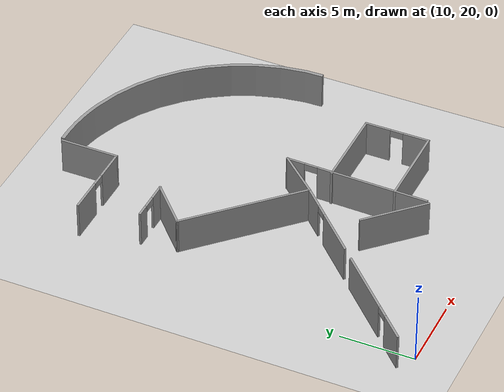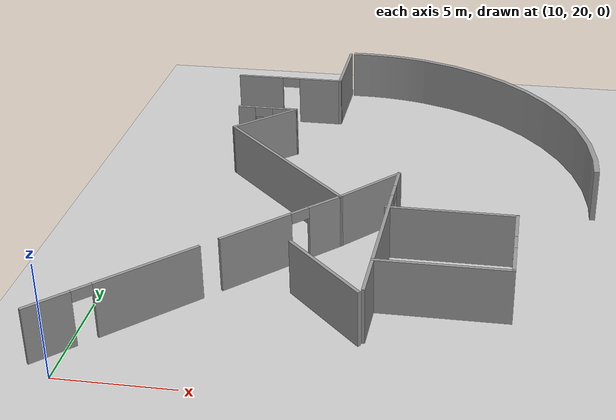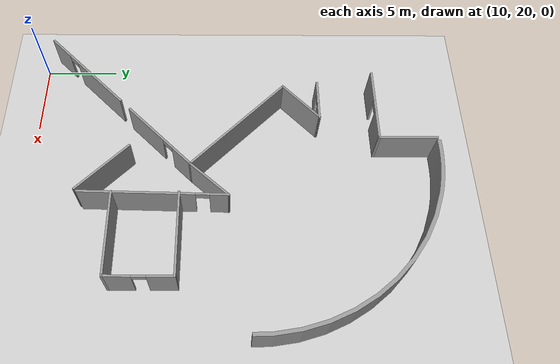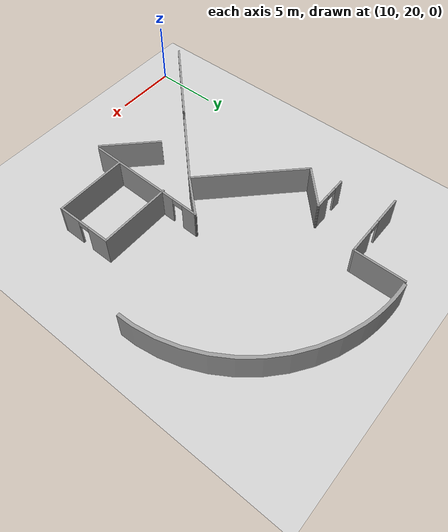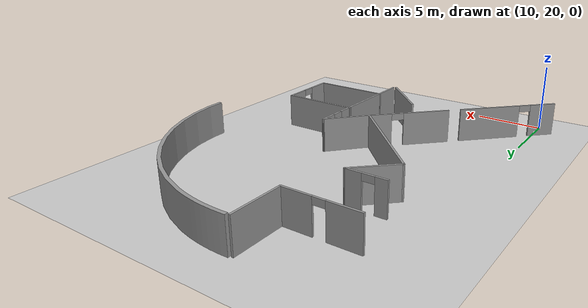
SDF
<sdf version="1.6">
 <world name="default">
  <model name="ground_plane">
   <static>1</static>
   <link name="link">
    <collision name="collision">
     <geometry><plane><normal>0 0 1</normal><size>100 100</size></plane></geometry>
     <surface>
      <contact><collide_bitmask>65535</collide_bitmask></contact>
      <friction><ode><mu>100</mu><mu2>50</mu2></ode></friction>
     </surface>
    </collision>
    <visual name="visual">
     <cast_shadows>0</cast_shadows>
     <geometry><plane><normal>0 0 1</normal><size>100 100</size></plane></geometry>
     <material>
      <script><uri>file://media/materials/scripts/gazebo.material</uri><name>Gazebo/Grey</name></script>
     </material>
    </visual>
   </link>
  </model>
  <model name="Curved_wall_1.25m">
   <link name="link_0">
    <inertial>
     <mass>1</mass>
     <inertia>
      <ixx>0.166667</ixx>
      <ixy>0</ixy>
      <ixz>0</ixz>
      <iyy>0.166667</iyy>
      <iyz>0</iyz>
      <izz>0.166667</izz>
     </inertia>
    </inertial>
    <pose>-4.4e-05 -6e-06 0 0 -0 0</pose>
    <visual name="visual">
     <geometry><mesh><uri>meshes/curved wall.dae</uri><scale>1 1 1</scale></mesh></geometry>
     <material>
      <lighting>1</lighting>
      <script><uri>file://media/materials/scripts/gazebo.material</uri><name>Gazebo/Grey</name></script>
      <shader type="pixel"/>
     </material>
    </visual>
    <collision name="collision">
     <geometry><mesh><uri>meshes/curved wall.dae</uri><scale>1 1 1</scale></mesh></geometry>
     <surface>
      <friction>
       <ode><mu>1</mu><mu2>1</mu2><fdir1>0 0 0</fdir1><slip1>0</slip1><slip2>0</slip2></ode>
       <torsional>
        <coefficient>1</coefficient>
        <patch_radius>0</patch_radius>
        <surface_radius>0</surface_radius>
        <use_patch_radius>1</use_patch_radius>
        <ode><slip>0</slip></ode>
       </torsional>
      </friction>
      <bounce><restitution_coefficient>0</restitution_coefficient><threshold>1e+06</threshold></bounce>
      <contact>
       <collide_without_contact>0</collide_without_contact>
       <collide_without_contact_bitmask>1</collide_without_contact_bitmask>
       <collide_bitmask>1</collide_bitmask>
       <ode>
        <soft_cfm>0</soft_cfm>
        <soft_erp>0.2</soft_erp>
        <kp>1e+13</kp>
        <kd>1</kd>
        <max_vel>0.01</max_vel>
        <min_depth>0</min_depth>
       </ode>
       <bullet>
        <split_impulse>1</split_impulse>
        <split_impulse_penetration_threshold>-0.01</split_impulse_penetration_threshold>
        <soft_cfm>0</soft_cfm>
        <soft_erp>0.2</soft_erp>
        <kp>1e+13</kp>
        <kd>1</kd>
       </bullet>
      </contact>
     </surface>
    </collision>
   </link>
   <static>1</static>
   <pose>25.5983 43.227 1.24999 6e-06 -5e-06 0.031431</pose>
  </model>
  <model name="Level_1_with_doors">
   <link name="Wall_18">
    <pose>9.68123 21.1617 0 0 -0 0</pose>
    <visual name="Wall_18_Visual_2">
     <pose>0.051797 0 2.25 0 -0 0</pose>
     <geometry><box><size>0.9 0.15 0.5</size></box></geometry>
     <material>
      <script><uri>file://media/materials/scripts/gazebo.material</uri><name>Gazebo/Grey</name></script>
      <ambient>1 1 1 1</ambient>
      <shader type="pixel"/>
     </material>
     <meta><layer>0</layer></meta>
    </visual>
    <visual name="Wall_18_Visual_1">
     <pose>1.6259 0 1.25 0 -0 0</pose>
     <geometry><box><size>2.2482 0.15 2.5</size></box></geometry>
     <material>
      <script><uri>file://media/materials/scripts/gazebo.material</uri><name>Gazebo/Grey</name></script>
      <ambient>1 1 1 1</ambient>
      <shader type="pixel"/>
     </material>
     <meta><layer>0</layer></meta>
    </visual>
    <visual name="Wall_18_Visual_0">
     <pose>-1.5741 0 1.25 0 -0 0</pose>
     <geometry><box><size>2.3518 0.15 2.5</size></box></geometry>
     <material>
      <script><uri>file://media/materials/scripts/gazebo.material</uri><name>Gazebo/Grey</name></script>
      <ambient>1 1 1 1</ambient>
      <shader type="pixel"/>
     </material>
     <meta><layer>0</layer></meta>
    </visual>
    <collision name="Wall_18_Collision_0">
     <pose>-1.5741 0 1.25 0 -0 0</pose>
     <geometry><box><size>2.3518 0.15 2.5</size></box></geometry>
     <surface>
      <friction>
       <ode><mu>1</mu><mu2>1</mu2><fdir1>0 0 0</fdir1><slip1>0</slip1><slip2>0</slip2></ode>
       <torsional>
        <coefficient>1</coefficient>
        <patch_radius>0</patch_radius>
        <surface_radius>0</surface_radius>
        <use_patch_radius>1</use_patch_radius>
        <ode><slip>0</slip></ode>
       </torsional>
      </friction>
      <bounce><restitution_coefficient>0</restitution_coefficient><threshold>1e+06</threshold></bounce>
      <contact>
       <collide_without_contact>0</collide_without_contact>
       <collide_without_contact_bitmask>1</collide_without_contact_bitmask>
       <collide_bitmask>1</collide_bitmask>
       <ode>
        <soft_cfm>0</soft_cfm>
        <soft_erp>0.2</soft_erp>
        <kp>1e+13</kp>
        <kd>1</kd>
        <max_vel>0.01</max_vel>
        <min_depth>0</min_depth>
       </ode>
       <bullet>
        <split_impulse>1</split_impulse>
        <split_impulse_penetration_threshold>-0.01</split_impulse_penetration_threshold>
        <soft_cfm>0</soft_cfm>
        <soft_erp>0.2</soft_erp>
        <kp>1e+13</kp>
        <kd>1</kd>
       </bullet>
      </contact>
     </surface>
    </collision>
    <collision name="Wall_18_Collision_2">
     <pose>0.051797 0 2.25 0 -0 0</pose>
     <geometry><box><size>0.9 0.15 0.5</size></box></geometry>
     <surface>
      <friction>
       <ode><mu>1</mu><mu2>1</mu2><fdir1>0 0 0</fdir1><slip1>0</slip1><slip2>0</slip2></ode>
       <torsional>
        <coefficient>1</coefficient>
        <patch_radius>0</patch_radius>
        <surface_radius>0</surface_radius>
        <use_patch_radius>1</use_patch_radius>
        <ode><slip>0</slip></ode>
       </torsional>
      </friction>
      <bounce><restitution_coefficient>0</restitution_coefficient><threshold>1e+06</threshold></bounce>
      <contact>
       <collide_without_contact>0</collide_without_contact>
       <collide_without_contact_bitmask>1</collide_without_contact_bitmask>
       <collide_bitmask>1</collide_bitmask>
       <ode>
        <soft_cfm>0</soft_cfm>
        <soft_erp>0.2</soft_erp>
        <kp>1e+13</kp>
        <kd>1</kd>
        <max_vel>0.01</max_vel>
        <min_depth>0</min_depth>
       </ode>
       <bullet>
        <split_impulse>1</split_impulse>
        <split_impulse_penetration_threshold>-0.01</split_impulse_penetration_threshold>
        <soft_cfm>0</soft_cfm>
        <soft_erp>0.2</soft_erp>
        <kp>1e+13</kp>
        <kd>1</kd>
       </bullet>
      </contact>
     </surface>
    </collision>
    <collision name="Wall_18_Collision_1">
     <pose>1.6259 0 1.25 0 -0 0</pose>
     <geometry><box><size>2.2482 0.15 2.5</size></box></geometry>
     <surface>
      <friction>
       <ode><mu>1</mu><mu2>1</mu2><fdir1>0 0 0</fdir1><slip1>0</slip1><slip2>0</slip2></ode>
       <torsional>
        <coefficient>1</coefficient>
        <patch_radius>0</patch_radius>
        <surface_radius>0</surface_radius>
        <use_patch_radius>1</use_patch_radius>
        <ode><slip>0</slip></ode>
       </torsional>
      </friction>
      <bounce><restitution_coefficient>0</restitution_coefficient><threshold>1e+06</threshold></bounce>
      <contact>
       <collide_without_contact>0</collide_without_contact>
       <collide_without_contact_bitmask>1</collide_without_contact_bitmask>
       <collide_bitmask>1</collide_bitmask>
       <ode>
        <soft_cfm>0</soft_cfm>
        <soft_erp>0.2</soft_erp>
        <kp>1e+13</kp>
        <kd>1</kd>
        <max_vel>0.01</max_vel>
        <min_depth>0</min_depth>
       </ode>
       <bullet>
        <split_impulse>1</split_impulse>
        <split_impulse_penetration_threshold>-0.01</split_impulse_penetration_threshold>
        <soft_cfm>0</soft_cfm>
        <soft_erp>0.2</soft_erp>
        <kp>1e+13</kp>
        <kd>1</kd>
       </bullet>
      </contact>
     </surface>
    </collision>
   </link>
   <link name="Wall_19">
    <pose>12.3562 23.0867 0 0 -0 1.5708</pose>
    <visual name="Wall_19_Visual">
     <pose>0 0 1.25 0 -0 0</pose>
     <geometry><box><size>4 0.15 2.5</size></box></geometry>
     <material>
      <script><uri>file://media/materials/scripts/gazebo.material</uri><name>Gazebo/Grey</name></script>
      <ambient>1 1 1 1</ambient>
      <shader type="pixel"/>
     </material>
     <meta><layer>0</layer></meta>
    </visual>
    <collision name="Wall_19_Collision">
     <pose>0 0 1.25 0 -0 0</pose>
     <geometry><box><size>4 0.15 2.5</size></box></geometry>
     <surface>
      <friction>
       <ode><mu>1</mu><mu2>1</mu2><fdir1>0 0 0</fdir1><slip1>0</slip1><slip2>0</slip2></ode>
       <torsional>
        <coefficient>1</coefficient>
        <patch_radius>0</patch_radius>
        <surface_radius>0</surface_radius>
        <use_patch_radius>1</use_patch_radius>
        <ode><slip>0</slip></ode>
       </torsional>
      </friction>
      <bounce><restitution_coefficient>0</restitution_coefficient><threshold>1e+06</threshold></bounce>
      <contact>
       <collide_without_contact>0</collide_without_contact>
       <collide_without_contact_bitmask>1</collide_without_contact_bitmask>
       <collide_bitmask>1</collide_bitmask>
       <ode>
        <soft_cfm>0</soft_cfm>
        <soft_erp>0.2</soft_erp>
        <kp>1e+13</kp>
        <kd>1</kd>
        <max_vel>0.01</max_vel>
        <min_depth>0</min_depth>
       </ode>
       <bullet>
        <split_impulse>1</split_impulse>
        <split_impulse_penetration_threshold>-0.01</split_impulse_penetration_threshold>
        <soft_cfm>0</soft_cfm>
        <soft_erp>0.2</soft_erp>
        <kp>1e+13</kp>
        <kd>1</kd>
       </bullet>
      </contact>
     </surface>
    </collision>
   </link>
   <link name="Wall_24">
    <pose>9.27646 3.41784 0 0 -0 0.785398</pose>
    <visual name="Wall_24_Visual_6">
     <pose>5.16658 0 2.25 0 -0 0</pose>
     <geometry><box><size>0.9 0.15 0.5</size></box></geometry>
     <material>
      <script><uri>file://media/materials/scripts/gazebo.material</uri><name>Gazebo/Grey</name></script>
      <ambient>1 1 1 1</ambient>
      <shader type="pixel"/>
     </material>
     <meta><layer>0</layer></meta>
    </visual>
    <visual name="Wall_24_Visual_0">
     <pose>-6.3589 0 1.25 0 -0 0</pose>
     <geometry><box><size>2.0322 0.15 2.5</size></box></geometry>
     <material>
      <script><uri>file://media/materials/scripts/gazebo.material</uri><name>Gazebo/Grey</name></script>
      <ambient>1 1 1 1</ambient>
      <shader type="pixel"/>
     </material>
     <meta><layer>0</layer></meta>
    </visual>
    <visual name="Wall_24_Visual_5">
     <pose>0.291819 0 2.25 0 -0 0</pose>
     <geometry><box><size>0 0.15 0.5</size></box></geometry>
     <material>
      <script><uri>file://media/materials/scripts/gazebo.material</uri><name>Gazebo/Grey</name></script>
      <ambient>1 1 1 1</ambient>
      <shader type="pixel"/>
     </material>
     <meta><layer>0</layer></meta>
    </visual>
    <visual name="Wall_24_Visual_3">
     <pose>6.49579 0 1.25 0 -0 0</pose>
     <geometry><box><size>1.75842 0.15 2.5</size></box></geometry>
     <material>
      <script><uri>file://media/materials/scripts/gazebo.material</uri><name>Gazebo/Grey</name></script>
      <ambient>1 1 1 1</ambient>
      <shader type="pixel"/>
     </material>
     <meta><layer>0</layer></meta>
    </visual>
    <visual name="Wall_24_Visual_1">
     <pose>-2.07549 0 1.25 0 -0 0</pose>
     <geometry><box><size>4.73462 0.15 2.5</size></box></geometry>
     <material>
      <script><uri>file://media/materials/scripts/gazebo.material</uri><name>Gazebo/Grey</name></script>
      <ambient>1 1 1 1</ambient>
      <shader type="pixel"/>
     </material>
     <meta><layer>0</layer></meta>
    </visual>
    <visual name="Wall_24_Visual_2">
     <pose>2.9542 0 1.25 0 -0 0</pose>
     <geometry><box><size>3.52476 0.15 2.5</size></box></geometry>
     <material>
      <script><uri>file://media/materials/scripts/gazebo.material</uri><name>Gazebo/Grey</name></script>
      <ambient>1 1 1 1</ambient>
      <shader type="pixel"/>
     </material>
     <meta><layer>0</layer></meta>
    </visual>
    <visual name="Wall_24_Visual_4">
     <pose>-4.8928 0 2.25 0 -0 0</pose>
     <geometry><box><size>0.9 0.15 0.5</size></box></geometry>
     <material>
      <script><uri>file://media/materials/scripts/gazebo.material</uri><name>Gazebo/Grey</name></script>
      <ambient>1 1 1 1</ambient>
      <shader type="pixel"/>
     </material>
     <meta><layer>0</layer></meta>
    </visual>
    <collision name="Wall_24_Collision_1">
     <pose>-2.07549 0 1.25 0 -0 0</pose>
     <geometry><box><size>4.73462 0.15 2.5</size></box></geometry>
     <surface>
      <friction>
       <ode><mu>1</mu><mu2>1</mu2><fdir1>0 0 0</fdir1><slip1>0</slip1><slip2>0</slip2></ode>
       <torsional>
        <coefficient>1</coefficient>
        <patch_radius>0</patch_radius>
        <surface_radius>0</surface_radius>
        <use_patch_radius>1</use_patch_radius>
        <ode><slip>0</slip></ode>
       </torsional>
      </friction>
      <bounce><restitution_coefficient>0</restitution_coefficient><threshold>1e+06</threshold></bounce>
      <contact>
       <collide_without_contact>0</collide_without_contact>
       <collide_without_contact_bitmask>1</collide_without_contact_bitmask>
       <collide_bitmask>1</collide_bitmask>
       <ode>
        <soft_cfm>0</soft_cfm>
        <soft_erp>0.2</soft_erp>
        <kp>1e+13</kp>
        <kd>1</kd>
        <max_vel>0.01</max_vel>
        <min_depth>0</min_depth>
       </ode>
       <bullet>
        <split_impulse>1</split_impulse>
        <split_impulse_penetration_threshold>-0.01</split_impulse_penetration_threshold>
        <soft_cfm>0</soft_cfm>
        <soft_erp>0.2</soft_erp>
        <kp>1e+13</kp>
        <kd>1</kd>
       </bullet>
      </contact>
     </surface>
    </collision>
    <collision name="Wall_24_Collision_2">
     <pose>2.9542 0 1.25 0 -0 0</pose>
     <geometry><box><size>3.52476 0.15 2.5</size></box></geometry>
     <surface>
      <friction>
       <ode><mu>1</mu><mu2>1</mu2><fdir1>0 0 0</fdir1><slip1>0</slip1><slip2>0</slip2></ode>
       <torsional>
        <coefficient>1</coefficient>
        <patch_radius>0</patch_radius>
        <surface_radius>0</surface_radius>
        <use_patch_radius>1</use_patch_radius>
        <ode><slip>0</slip></ode>
       </torsional>
      </friction>
      <bounce><restitution_coefficient>0</restitution_coefficient><threshold>1e+06</threshold></bounce>
      <contact>
       <collide_without_contact>0</collide_without_contact>
       <collide_without_contact_bitmask>1</collide_without_contact_bitmask>
       <collide_bitmask>1</collide_bitmask>
       <ode>
        <soft_cfm>0</soft_cfm>
        <soft_erp>0.2</soft_erp>
        <kp>1e+13</kp>
        <kd>1</kd>
        <max_vel>0.01</max_vel>
        <min_depth>0</min_depth>
       </ode>
       <bullet>
        <split_impulse>1</split_impulse>
        <split_impulse_penetration_threshold>-0.01</split_impulse_penetration_threshold>
        <soft_cfm>0</soft_cfm>
        <soft_erp>0.2</soft_erp>
        <kp>1e+13</kp>
        <kd>1</kd>
       </bullet>
      </contact>
     </surface>
    </collision>
    <collision name="Wall_24_Collision_6">
     <pose>5.16658 0 2.25 0 -0 0</pose>
     <geometry><box><size>0.9 0.15 0.5</size></box></geometry>
     <surface>
      <friction>
       <ode><mu>1</mu><mu2>1</mu2><fdir1>0 0 0</fdir1><slip1>0</slip1><slip2>0</slip2></ode>
       <torsional>
        <coefficient>1</coefficient>
        <patch_radius>0</patch_radius>
        <surface_radius>0</surface_radius>
        <use_patch_radius>1</use_patch_radius>
        <ode><slip>0</slip></ode>
       </torsional>
      </friction>
      <bounce><restitution_coefficient>0</restitution_coefficient><threshold>1e+06</threshold></bounce>
      <contact>
       <collide_without_contact>0</collide_without_contact>
       <collide_without_contact_bitmask>1</collide_without_contact_bitmask>
       <collide_bitmask>1</collide_bitmask>
       <ode>
        <soft_cfm>0</soft_cfm>
        <soft_erp>0.2</soft_erp>
        <kp>1e+13</kp>
        <kd>1</kd>
        <max_vel>0.01</max_vel>
        <min_depth>0</min_depth>
       </ode>
       <bullet>
        <split_impulse>1</split_impulse>
        <split_impulse_penetration_threshold>-0.01</split_impulse_penetration_threshold>
        <soft_cfm>0</soft_cfm>
        <soft_erp>0.2</soft_erp>
        <kp>1e+13</kp>
        <kd>1</kd>
       </bullet>
      </contact>
     </surface>
    </collision>
    <collision name="Wall_24_Collision_3">
     <pose>6.49579 0 1.25 0 -0 0</pose>
     <geometry><box><size>1.75842 0.15 2.5</size></box></geometry>
     <surface>
      <friction>
       <ode><mu>1</mu><mu2>1</mu2><fdir1>0 0 0</fdir1><slip1>0</slip1><slip2>0</slip2></ode>
       <torsional>
        <coefficient>1</coefficient>
        <patch_radius>0</patch_radius>
        <surface_radius>0</surface_radius>
        <use_patch_radius>1</use_patch_radius>
        <ode><slip>0</slip></ode>
       </torsional>
      </friction>
      <bounce><restitution_coefficient>0</restitution_coefficient><threshold>1e+06</threshold></bounce>
      <contact>
       <collide_without_contact>0</collide_without_contact>
       <collide_without_contact_bitmask>1</collide_without_contact_bitmask>
       <collide_bitmask>1</collide_bitmask>
       <ode>
        <soft_cfm>0</soft_cfm>
        <soft_erp>0.2</soft_erp>
        <kp>1e+13</kp>
        <kd>1</kd>
        <max_vel>0.01</max_vel>
        <min_depth>0</min_depth>
       </ode>
       <bullet>
        <split_impulse>1</split_impulse>
        <split_impulse_penetration_threshold>-0.01</split_impulse_penetration_threshold>
        <soft_cfm>0</soft_cfm>
        <soft_erp>0.2</soft_erp>
        <kp>1e+13</kp>
        <kd>1</kd>
       </bullet>
      </contact>
     </surface>
    </collision>
    <collision name="Wall_24_Collision_0">
     <pose>-6.3589 0 1.25 0 -0 0</pose>
     <geometry><box><size>2.0322 0.15 2.5</size></box></geometry>
     <surface>
      <friction>
       <ode><mu>1</mu><mu2>1</mu2><fdir1>0 0 0</fdir1><slip1>0</slip1><slip2>0</slip2></ode>
       <torsional>
        <coefficient>1</coefficient>
        <patch_radius>0</patch_radius>
        <surface_radius>0</surface_radius>
        <use_patch_radius>1</use_patch_radius>
        <ode><slip>0</slip></ode>
       </torsional>
      </friction>
      <bounce><restitution_coefficient>0</restitution_coefficient><threshold>1e+06</threshold></bounce>
      <contact>
       <collide_without_contact>0</collide_without_contact>
       <collide_without_contact_bitmask>1</collide_without_contact_bitmask>
       <collide_bitmask>1</collide_bitmask>
       <ode>
        <soft_cfm>0</soft_cfm>
        <soft_erp>0.2</soft_erp>
        <kp>1e+13</kp>
        <kd>1</kd>
        <max_vel>0.01</max_vel>
        <min_depth>0</min_depth>
       </ode>
       <bullet>
        <split_impulse>1</split_impulse>
        <split_impulse_penetration_threshold>-0.01</split_impulse_penetration_threshold>
        <soft_cfm>0</soft_cfm>
        <soft_erp>0.2</soft_erp>
        <kp>1e+13</kp>
        <kd>1</kd>
       </bullet>
      </contact>
     </surface>
    </collision>
    <collision name="Wall_24_Collision_4">
     <pose>-4.8928 0 2.25 0 -0 0</pose>
     <geometry><box><size>0.9 0.15 0.5</size></box></geometry>
     <surface>
      <friction>
       <ode><mu>1</mu><mu2>1</mu2><fdir1>0 0 0</fdir1><slip1>0</slip1><slip2>0</slip2></ode>
       <torsional>
        <coefficient>1</coefficient>
        <patch_radius>0</patch_radius>
        <surface_radius>0</surface_radius>
        <use_patch_radius>1</use_patch_radius>
        <ode><slip>0</slip></ode>
       </torsional>
      </friction>
      <bounce><restitution_coefficient>0</restitution_coefficient><threshold>1e+06</threshold></bounce>
      <contact>
       <collide_without_contact>0</collide_without_contact>
       <collide_without_contact_bitmask>1</collide_without_contact_bitmask>
       <collide_bitmask>1</collide_bitmask>
       <ode>
        <soft_cfm>0</soft_cfm>
        <soft_erp>0.2</soft_erp>
        <kp>1e+13</kp>
        <kd>1</kd>
        <max_vel>0.01</max_vel>
        <min_depth>0</min_depth>
       </ode>
       <bullet>
        <split_impulse>1</split_impulse>
        <split_impulse_penetration_threshold>-0.01</split_impulse_penetration_threshold>
        <soft_cfm>0</soft_cfm>
        <soft_erp>0.2</soft_erp>
        <kp>1e+13</kp>
        <kd>1</kd>
       </bullet>
      </contact>
     </surface>
    </collision>
    <collision name="Wall_24_Collision_5">
     <pose>0.291819 0 2.25 0 -0 0</pose>
     <geometry><box><size>0 0.15 0.5</size></box></geometry>
     <surface>
      <friction>
       <ode><mu>1</mu><mu2>1</mu2><fdir1>0 0 0</fdir1><slip1>0</slip1><slip2>0</slip2></ode>
       <torsional>
        <coefficient>1</coefficient>
        <patch_radius>0</patch_radius>
        <surface_radius>0</surface_radius>
        <use_patch_radius>1</use_patch_radius>
        <ode><slip>0</slip></ode>
       </torsional>
      </friction>
      <bounce><restitution_coefficient>0</restitution_coefficient><threshold>1e+06</threshold></bounce>
      <contact>
       <collide_without_contact>0</collide_without_contact>
       <collide_without_contact_bitmask>1</collide_without_contact_bitmask>
       <collide_bitmask>1</collide_bitmask>
       <ode>
        <soft_cfm>0</soft_cfm>
        <soft_erp>0.2</soft_erp>
        <kp>1e+13</kp>
        <kd>1</kd>
        <max_vel>0.01</max_vel>
        <min_depth>0</min_depth>
       </ode>
       <bullet>
        <split_impulse>1</split_impulse>
        <split_impulse_penetration_threshold>-0.01</split_impulse_penetration_threshold>
        <soft_cfm>0</soft_cfm>
        <soft_erp>0.2</soft_erp>
        <kp>1e+13</kp>
        <kd>1</kd>
       </bullet>
      </contact>
     </surface>
    </collision>
   </link>
   <link name="Wall_25">
    <pose>11.3094 11.7087 0 0 -0 2.35619</pose>
    <visual name="Wall_25_Visual">
     <pose>0 0 1.25 0 -0 0</pose>
     <geometry><box><size>9 0.15 2.5</size></box></geometry>
     <material>
      <script><uri>file://media/materials/scripts/gazebo.material</uri><name>Gazebo/Grey</name></script>
      <ambient>1 1 1 1</ambient>
      <shader type="pixel"/>
     </material>
     <meta><layer>0</layer></meta>
    </visual>
    <collision name="Wall_25_Collision">
     <pose>0 0 1.25 0 -0 0</pose>
     <geometry><box><size>9 0.15 2.5</size></box></geometry>
     <surface>
      <friction>
       <ode><mu>1</mu><mu2>1</mu2><fdir1>0 0 0</fdir1><slip1>0</slip1><slip2>0</slip2></ode>
       <torsional>
        <coefficient>1</coefficient>
        <patch_radius>0</patch_radius>
        <surface_radius>0</surface_radius>
        <use_patch_radius>1</use_patch_radius>
        <ode><slip>0</slip></ode>
       </torsional>
      </friction>
      <bounce><restitution_coefficient>0</restitution_coefficient><threshold>1e+06</threshold></bounce>
      <contact>
       <collide_without_contact>0</collide_without_contact>
       <collide_without_contact_bitmask>1</collide_without_contact_bitmask>
       <collide_bitmask>1</collide_bitmask>
       <ode>
        <soft_cfm>0</soft_cfm>
        <soft_erp>0.2</soft_erp>
        <kp>1e+13</kp>
        <kd>1</kd>
        <max_vel>0.01</max_vel>
        <min_depth>0</min_depth>
       </ode>
       <bullet>
        <split_impulse>1</split_impulse>
        <split_impulse_penetration_threshold>-0.01</split_impulse_penetration_threshold>
        <soft_cfm>0</soft_cfm>
        <soft_erp>0.2</soft_erp>
        <kp>1e+13</kp>
        <kd>1</kd>
       </bullet>
      </contact>
     </surface>
    </collision>
   </link>
   <link name="Wall_29">
    <pose>9.30646 17.2506 0 0 -0 0</pose>
    <visual name="Wall_29_Visual_0">
     <pose>-1.06598 0 1.25 0 -0 0</pose>
     <geometry><box><size>0.868033 0.15 2.5</size></box></geometry>
     <material>
      <script><uri>file://media/materials/scripts/gazebo.material</uri><name>Gazebo/Grey</name></script>
      <ambient>1 1 1 1</ambient>
      <shader type="pixel"/>
     </material>
     <meta><layer>0</layer></meta>
    </visual>
    <visual name="Wall_29_Visual_1">
     <pose>0.884017 0 1.25 0 -0 0</pose>
     <geometry><box><size>1.23197 0.15 2.5</size></box></geometry>
     <material>
      <script><uri>file://media/materials/scripts/gazebo.material</uri><name>Gazebo/Grey</name></script>
      <ambient>1 1 1 1</ambient>
      <shader type="pixel"/>
     </material>
     <meta><layer>0</layer></meta>
    </visual>
    <visual name="Wall_29_Visual_2">
     <pose>-0.181967 0 2.25 0 -0 0</pose>
     <geometry><box><size>0.9 0.15 0.5</size></box></geometry>
     <material>
      <script><uri>file://media/materials/scripts/gazebo.material</uri><name>Gazebo/Grey</name></script>
      <ambient>1 1 1 1</ambient>
      <shader type="pixel"/>
     </material>
     <meta><layer>0</layer></meta>
    </visual>
    <collision name="Wall_29_Collision_0">
     <pose>-1.06598 0 1.25 0 -0 0</pose>
     <geometry><box><size>0.868033 0.15 2.5</size></box></geometry>
     <surface>
      <friction>
       <ode><mu>1</mu><mu2>1</mu2><fdir1>0 0 0</fdir1><slip1>0</slip1><slip2>0</slip2></ode>
       <torsional>
        <coefficient>1</coefficient>
        <patch_radius>0</patch_radius>
        <surface_radius>0</surface_radius>
        <use_patch_radius>1</use_patch_radius>
        <ode><slip>0</slip></ode>
       </torsional>
      </friction>
      <bounce><restitution_coefficient>0</restitution_coefficient><threshold>1e+06</threshold></bounce>
      <contact>
       <collide_without_contact>0</collide_without_contact>
       <collide_without_contact_bitmask>1</collide_without_contact_bitmask>
       <collide_bitmask>1</collide_bitmask>
       <ode>
        <soft_cfm>0</soft_cfm>
        <soft_erp>0.2</soft_erp>
        <kp>1e+13</kp>
        <kd>1</kd>
        <max_vel>0.01</max_vel>
        <min_depth>0</min_depth>
       </ode>
       <bullet>
        <split_impulse>1</split_impulse>
        <split_impulse_penetration_threshold>-0.01</split_impulse_penetration_threshold>
        <soft_cfm>0</soft_cfm>
        <soft_erp>0.2</soft_erp>
        <kp>1e+13</kp>
        <kd>1</kd>
       </bullet>
      </contact>
     </surface>
    </collision>
    <collision name="Wall_29_Collision_2">
     <pose>-0.181967 0 2.25 0 -0 0</pose>
     <geometry><box><size>0.9 0.15 0.5</size></box></geometry>
     <surface>
      <friction>
       <ode><mu>1</mu><mu2>1</mu2><fdir1>0 0 0</fdir1><slip1>0</slip1><slip2>0</slip2></ode>
       <torsional>
        <coefficient>1</coefficient>
        <patch_radius>0</patch_radius>
        <surface_radius>0</surface_radius>
        <use_patch_radius>1</use_patch_radius>
        <ode><slip>0</slip></ode>
       </torsional>
      </friction>
      <bounce><restitution_coefficient>0</restitution_coefficient><threshold>1e+06</threshold></bounce>
      <contact>
       <collide_without_contact>0</collide_without_contact>
       <collide_without_contact_bitmask>1</collide_without_contact_bitmask>
       <collide_bitmask>1</collide_bitmask>
       <ode>
        <soft_cfm>0</soft_cfm>
        <soft_erp>0.2</soft_erp>
        <kp>1e+13</kp>
        <kd>1</kd>
        <max_vel>0.01</max_vel>
        <min_depth>0</min_depth>
       </ode>
       <bullet>
        <split_impulse>1</split_impulse>
        <split_impulse_penetration_threshold>-0.01</split_impulse_penetration_threshold>
        <soft_cfm>0</soft_cfm>
        <soft_erp>0.2</soft_erp>
        <kp>1e+13</kp>
        <kd>1</kd>
       </bullet>
      </contact>
     </surface>
    </collision>
    <collision name="Wall_29_Collision_1">
     <pose>0.884017 0 1.25 0 -0 0</pose>
     <geometry><box><size>1.23197 0.15 2.5</size></box></geometry>
     <surface>
      <friction>
       <ode><mu>1</mu><mu2>1</mu2><fdir1>0 0 0</fdir1><slip1>0</slip1><slip2>0</slip2></ode>
       <torsional>
        <coefficient>1</coefficient>
        <patch_radius>0</patch_radius>
        <surface_radius>0</surface_radius>
        <use_patch_radius>1</use_patch_radius>
        <ode><slip>0</slip></ode>
       </torsional>
      </friction>
      <bounce><restitution_coefficient>0</restitution_coefficient><threshold>1e+06</threshold></bounce>
      <contact>
       <collide_without_contact>0</collide_without_contact>
       <collide_without_contact_bitmask>1</collide_without_contact_bitmask>
       <collide_bitmask>1</collide_bitmask>
       <ode>
        <soft_cfm>0</soft_cfm>
        <soft_erp>0.2</soft_erp>
        <kp>1e+13</kp>
        <kd>1</kd>
        <max_vel>0.01</max_vel>
        <min_depth>0</min_depth>
       </ode>
       <bullet>
        <split_impulse>1</split_impulse>
        <split_impulse_penetration_threshold>-0.01</split_impulse_penetration_threshold>
        <soft_cfm>0</soft_cfm>
        <soft_erp>0.2</soft_erp>
        <kp>1e+13</kp>
        <kd>1</kd>
       </bullet>
      </contact>
     </surface>
    </collision>
   </link>
   <link name="Wall_30">
    <pose>9.45595 16.0441 0 0 0 -2.38398</pose>
    <visual name="Wall_30_Visual">
     <pose>0 0 1.25 0 -0 0</pose>
     <geometry><box><size>3.66146 0.15 2.5</size></box></geometry>
     <material>
      <script><uri>file://media/materials/scripts/gazebo.material</uri><name>Gazebo/Grey</name></script>
      <ambient>1 1 1 1</ambient>
      <shader type="pixel"/>
     </material>
     <meta><layer>0</layer></meta>
    </visual>
    <collision name="Wall_30_Collision">
     <pose>0 0 1.25 0 -0 0</pose>
     <geometry><box><size>3.66146 0.15 2.5</size></box></geometry>
     <surface>
      <friction>
       <ode><mu>1</mu><mu2>1</mu2><fdir1>0 0 0</fdir1><slip1>0</slip1><slip2>0</slip2></ode>
       <torsional>
        <coefficient>1</coefficient>
        <patch_radius>0</patch_radius>
        <surface_radius>0</surface_radius>
        <use_patch_radius>1</use_patch_radius>
        <ode><slip>0</slip></ode>
       </torsional>
      </friction>
      <bounce><restitution_coefficient>0</restitution_coefficient><threshold>1e+06</threshold></bounce>
      <contact>
       <collide_without_contact>0</collide_without_contact>
       <collide_without_contact_bitmask>1</collide_without_contact_bitmask>
       <collide_bitmask>1</collide_bitmask>
       <ode>
        <soft_cfm>0</soft_cfm>
        <soft_erp>0.2</soft_erp>
        <kp>1e+13</kp>
        <kd>1</kd>
        <max_vel>0.01</max_vel>
        <min_depth>0</min_depth>
       </ode>
       <bullet>
        <split_impulse>1</split_impulse>
        <split_impulse_penetration_threshold>-0.01</split_impulse_penetration_threshold>
        <soft_cfm>0</soft_cfm>
        <soft_erp>0.2</soft_erp>
        <kp>1e+13</kp>
        <kd>1</kd>
       </bullet>
      </contact>
     </surface>
    </collision>
   </link>
   <link name="Wall_32">
    <pose>15.5755 9.84637 0 0 -0 0.839226</pose>
    <visual name="Wall_32_Visual">
     <pose>0 0 1.25 0 -0 0</pose>
     <geometry><box><size>3.5544 0.15 2.5</size></box></geometry>
     <material>
      <script><uri>file://media/materials/scripts/gazebo.material</uri><name>Gazebo/Grey</name></script>
      <ambient>1 1 1 1</ambient>
      <shader type="pixel"/>
     </material>
     <meta><layer>0</layer></meta>
    </visual>
    <collision name="Wall_32_Collision">
     <pose>0 0 1.25 0 -0 0</pose>
     <geometry><box><size>3.5544 0.15 2.5</size></box></geometry>
     <surface>
      <friction>
       <ode><mu>1</mu><mu2>1</mu2><fdir1>0 0 0</fdir1><slip1>0</slip1><slip2>0</slip2></ode>
       <torsional>
        <coefficient>1</coefficient>
        <patch_radius>0</patch_radius>
        <surface_radius>0</surface_radius>
        <use_patch_radius>1</use_patch_radius>
        <ode><slip>0</slip></ode>
       </torsional>
      </friction>
      <bounce><restitution_coefficient>0</restitution_coefficient><threshold>1e+06</threshold></bounce>
      <contact>
       <collide_without_contact>0</collide_without_contact>
       <collide_without_contact_bitmask>1</collide_without_contact_bitmask>
       <collide_bitmask>1</collide_bitmask>
       <ode>
        <soft_cfm>0</soft_cfm>
        <soft_erp>0.2</soft_erp>
        <kp>1e+13</kp>
        <kd>1</kd>
        <max_vel>0.01</max_vel>
        <min_depth>0</min_depth>
       </ode>
       <bullet>
        <split_impulse>1</split_impulse>
        <split_impulse_penetration_threshold>-0.01</split_impulse_penetration_threshold>
        <soft_cfm>0</soft_cfm>
        <soft_erp>0.2</soft_erp>
        <kp>1e+13</kp>
        <kd>1</kd>
       </bullet>
      </contact>
     </surface>
    </collision>
   </link>
   <link name="Wall_33">
    <pose>16.6068 6.28149 0 0 0 -1.59269</pose>
    <visual name="Wall_33_Visual_2">
     <pose>-3.17151 0 2.25 0 -0 0</pose>
     <geometry><box><size>0.9 0.15 0.5</size></box></geometry>
     <material>
      <script><uri>file://media/materials/scripts/gazebo.material</uri><name>Gazebo/Grey</name></script>
      <ambient>1 1 1 1</ambient>
      <shader type="pixel"/>
     </material>
     <meta><layer>0</layer></meta>
    </visual>
    <visual name="Wall_33_Visual_0">
     <pose>-4.26474 0 1.25 0 -0 0</pose>
     <geometry><box><size>1.28645 0.15 2.5</size></box></geometry>
     <material>
      <script><uri>file://media/materials/scripts/gazebo.material</uri><name>Gazebo/Grey</name></script>
      <ambient>1 1 1 1</ambient>
      <shader type="pixel"/>
     </material>
     <meta><layer>0</layer></meta>
    </visual>
    <visual name="Wall_33_Visual_1">
     <pose>1.09323 0 1.25 0 -0 0</pose>
     <geometry><box><size>7.62947 0.15 2.5</size></box></geometry>
     <material>
      <script><uri>file://media/materials/scripts/gazebo.material</uri><name>Gazebo/Grey</name></script>
      <ambient>1 1 1 1</ambient>
      <shader type="pixel"/>
     </material>
     <meta><layer>0</layer></meta>
    </visual>
    <collision name="Wall_33_Collision_2">
     <pose>-3.17151 0 2.25 0 -0 0</pose>
     <geometry><box><size>0.9 0.15 0.5</size></box></geometry>
     <surface>
      <friction>
       <ode><mu>1</mu><mu2>1</mu2><fdir1>0 0 0</fdir1><slip1>0</slip1><slip2>0</slip2></ode>
       <torsional>
        <coefficient>1</coefficient>
        <patch_radius>0</patch_radius>
        <surface_radius>0</surface_radius>
        <use_patch_radius>1</use_patch_radius>
        <ode><slip>0</slip></ode>
       </torsional>
      </friction>
      <bounce><restitution_coefficient>0</restitution_coefficient><threshold>1e+06</threshold></bounce>
      <contact>
       <collide_without_contact>0</collide_without_contact>
       <collide_without_contact_bitmask>1</collide_without_contact_bitmask>
       <collide_bitmask>1</collide_bitmask>
       <ode>
        <soft_cfm>0</soft_cfm>
        <soft_erp>0.2</soft_erp>
        <kp>1e+13</kp>
        <kd>1</kd>
        <max_vel>0.01</max_vel>
        <min_depth>0</min_depth>
       </ode>
       <bullet>
        <split_impulse>1</split_impulse>
        <split_impulse_penetration_threshold>-0.01</split_impulse_penetration_threshold>
        <soft_cfm>0</soft_cfm>
        <soft_erp>0.2</soft_erp>
        <kp>1e+13</kp>
        <kd>1</kd>
       </bullet>
      </contact>
     </surface>
    </collision>
    <collision name="Wall_33_Collision_1">
     <pose>1.09323 0 1.25 0 -0 0</pose>
     <geometry><box><size>7.62947 0.15 2.5</size></box></geometry>
     <surface>
      <friction>
       <ode><mu>1</mu><mu2>1</mu2><fdir1>0 0 0</fdir1><slip1>0</slip1><slip2>0</slip2></ode>
       <torsional>
        <coefficient>1</coefficient>
        <patch_radius>0</patch_radius>
        <surface_radius>0</surface_radius>
        <use_patch_radius>1</use_patch_radius>
        <ode><slip>0</slip></ode>
       </torsional>
      </friction>
      <bounce><restitution_coefficient>0</restitution_coefficient><threshold>1e+06</threshold></bounce>
      <contact>
       <collide_without_contact>0</collide_without_contact>
       <collide_without_contact_bitmask>1</collide_without_contact_bitmask>
       <collide_bitmask>1</collide_bitmask>
       <ode>
        <soft_cfm>0</soft_cfm>
        <soft_erp>0.2</soft_erp>
        <kp>1e+13</kp>
        <kd>1</kd>
        <max_vel>0.01</max_vel>
        <min_depth>0</min_depth>
       </ode>
       <bullet>
        <split_impulse>1</split_impulse>
        <split_impulse_penetration_threshold>-0.01</split_impulse_penetration_threshold>
        <soft_cfm>0</soft_cfm>
        <soft_erp>0.2</soft_erp>
        <kp>1e+13</kp>
        <kd>1</kd>
       </bullet>
      </contact>
     </surface>
    </collision>
    <collision name="Wall_33_Collision_0">
     <pose>-4.26474 0 1.25 0 -0 0</pose>
     <geometry><box><size>1.28645 0.15 2.5</size></box></geometry>
     <surface>
      <friction>
       <ode><mu>1</mu><mu2>1</mu2><fdir1>0 0 0</fdir1><slip1>0</slip1><slip2>0</slip2></ode>
       <torsional>
        <coefficient>1</coefficient>
        <patch_radius>0</patch_radius>
        <surface_radius>0</surface_radius>
        <use_patch_radius>1</use_patch_radius>
        <ode><slip>0</slip></ode>
       </torsional>
      </friction>
      <bounce><restitution_coefficient>0</restitution_coefficient><threshold>1e+06</threshold></bounce>
      <contact>
       <collide_without_contact>0</collide_without_contact>
       <collide_without_contact_bitmask>1</collide_without_contact_bitmask>
       <collide_bitmask>1</collide_bitmask>
       <ode>
        <soft_cfm>0</soft_cfm>
        <soft_erp>0.2</soft_erp>
        <kp>1e+13</kp>
        <kd>1</kd>
        <max_vel>0.01</max_vel>
        <min_depth>0</min_depth>
       </ode>
       <bullet>
        <split_impulse>1</split_impulse>
        <split_impulse_penetration_threshold>-0.01</split_impulse_penetration_threshold>
        <soft_cfm>0</soft_cfm>
        <soft_erp>0.2</soft_erp>
        <kp>1e+13</kp>
        <kd>1</kd>
       </bullet>
      </contact>
     </surface>
    </collision>
   </link>
   <link name="Wall_46">
    <pose>14.7047 2.86577 0 0 0 -0.785398</pose>
    <visual name="Wall_46_Visual">
     <pose>0 0 1.25 0 -0 0</pose>
     <geometry><box><size>4.75 0.15 2.5</size></box></geometry>
     <material>
      <script><uri>file://media/materials/scripts/gazebo.material</uri><name>Gazebo/Grey</name></script>
      <ambient>1 1 1 1</ambient>
      <shader type="pixel"/>
     </material>
     <meta><layer>0</layer></meta>
    </visual>
    <collision name="Wall_46_Collision">
     <pose>0 0 1.25 0 -0 0</pose>
     <geometry><box><size>4.75 0.15 2.5</size></box></geometry>
     <surface>
      <friction>
       <ode><mu>1</mu><mu2>1</mu2><fdir1>0 0 0</fdir1><slip1>0</slip1><slip2>0</slip2></ode>
       <torsional>
        <coefficient>1</coefficient>
        <patch_radius>0</patch_radius>
        <surface_radius>0</surface_radius>
        <use_patch_radius>1</use_patch_radius>
        <ode><slip>0</slip></ode>
       </torsional>
      </friction>
      <bounce><restitution_coefficient>0</restitution_coefficient><threshold>1e+06</threshold></bounce>
      <contact>
       <collide_without_contact>0</collide_without_contact>
       <collide_without_contact_bitmask>1</collide_without_contact_bitmask>
       <collide_bitmask>1</collide_bitmask>
       <ode>
        <soft_cfm>0</soft_cfm>
        <soft_erp>0.2</soft_erp>
        <kp>1e+13</kp>
        <kd>1</kd>
        <max_vel>0.01</max_vel>
        <min_depth>0</min_depth>
       </ode>
       <bullet>
        <split_impulse>1</split_impulse>
        <split_impulse_penetration_threshold>-0.01</split_impulse_penetration_threshold>
        <soft_cfm>0</soft_cfm>
        <soft_erp>0.2</soft_erp>
        <kp>1e+13</kp>
        <kd>1</kd>
       </bullet>
      </contact>
     </surface>
    </collision>
   </link>
   <link name="Wall_61">
    <pose>19.3432 7.96607 0 0 -0 0</pose>
    <visual name="Wall_61_Visual">
     <pose>0 0 1.25 0 -0 0</pose>
     <geometry><box><size>5.75 0.15 2.5</size></box></geometry>
     <material>
      <script><uri>file://media/materials/scripts/gazebo.material</uri><name>Gazebo/Grey</name></script>
      <ambient>1 1 1 1</ambient>
      <shader type="pixel"/>
     </material>
     <meta><layer>0</layer></meta>
    </visual>
    <collision name="Wall_61_Collision">
     <pose>0 0 1.25 0 -0 0</pose>
     <geometry><box><size>5.75 0.15 2.5</size></box></geometry>
     <surface>
      <friction>
       <ode><mu>1</mu><mu2>1</mu2><fdir1>0 0 0</fdir1><slip1>0</slip1><slip2>0</slip2></ode>
       <torsional>
        <coefficient>1</coefficient>
        <patch_radius>0</patch_radius>
        <surface_radius>0</surface_radius>
        <use_patch_radius>1</use_patch_radius>
        <ode><slip>0</slip></ode>
       </torsional>
      </friction>
      <bounce><restitution_coefficient>0</restitution_coefficient><threshold>1e+06</threshold></bounce>
      <contact>
       <collide_without_contact>0</collide_without_contact>
       <collide_without_contact_bitmask>1</collide_without_contact_bitmask>
       <collide_bitmask>1</collide_bitmask>
       <ode>
        <soft_cfm>0</soft_cfm>
        <soft_erp>0.2</soft_erp>
        <kp>1e+13</kp>
        <kd>1</kd>
        <max_vel>0.01</max_vel>
        <min_depth>0</min_depth>
       </ode>
       <bullet>
        <split_impulse>1</split_impulse>
        <split_impulse_penetration_threshold>-0.01</split_impulse_penetration_threshold>
        <soft_cfm>0</soft_cfm>
        <soft_erp>0.2</soft_erp>
        <kp>1e+13</kp>
        <kd>1</kd>
       </bullet>
      </contact>
     </surface>
    </collision>
   </link>
   <link name="Wall_62">
    <pose>22.1432 5.79107 0 0 0 -1.5708</pose>
    <visual name="Wall_62_Visual_1">
     <pose>1.33995 0 1.25 0 -0 0</pose>
     <geometry><box><size>1.8201 0.15 2.5</size></box></geometry>
     <material>
      <script><uri>file://media/materials/scripts/gazebo.material</uri><name>Gazebo/Grey</name></script>
      <ambient>1 1 1 1</ambient>
      <shader type="pixel"/>
     </material>
     <meta><layer>0</layer></meta>
    </visual>
    <visual name="Wall_62_Visual_0">
     <pose>-1.36005 0 1.25 0 -0 0</pose>
     <geometry><box><size>1.7799 0.15 2.5</size></box></geometry>
     <material>
      <script><uri>file://media/materials/scripts/gazebo.material</uri><name>Gazebo/Grey</name></script>
      <ambient>1 1 1 1</ambient>
      <shader type="pixel"/>
     </material>
     <meta><layer>0</layer></meta>
    </visual>
    <visual name="Wall_62_Visual_2">
     <pose>-0.020099 0 2.25 0 -0 0</pose>
     <geometry><box><size>0.9 0.15 0.5</size></box></geometry>
     <material>
      <script><uri>file://media/materials/scripts/gazebo.material</uri><name>Gazebo/Grey</name></script>
      <ambient>1 1 1 1</ambient>
      <shader type="pixel"/>
     </material>
     <meta><layer>0</layer></meta>
    </visual>
    <collision name="Wall_62_Collision_2">
     <pose>-0.020099 0 2.25 0 -0 0</pose>
     <geometry><box><size>0.9 0.15 0.5</size></box></geometry>
     <surface>
      <friction>
       <ode><mu>1</mu><mu2>1</mu2><fdir1>0 0 0</fdir1><slip1>0</slip1><slip2>0</slip2></ode>
       <torsional>
        <coefficient>1</coefficient>
        <patch_radius>0</patch_radius>
        <surface_radius>0</surface_radius>
        <use_patch_radius>1</use_patch_radius>
        <ode><slip>0</slip></ode>
       </torsional>
      </friction>
      <bounce><restitution_coefficient>0</restitution_coefficient><threshold>1e+06</threshold></bounce>
      <contact>
       <collide_without_contact>0</collide_without_contact>
       <collide_without_contact_bitmask>1</collide_without_contact_bitmask>
       <collide_bitmask>1</collide_bitmask>
       <ode>
        <soft_cfm>0</soft_cfm>
        <soft_erp>0.2</soft_erp>
        <kp>1e+13</kp>
        <kd>1</kd>
        <max_vel>0.01</max_vel>
        <min_depth>0</min_depth>
       </ode>
       <bullet>
        <split_impulse>1</split_impulse>
        <split_impulse_penetration_threshold>-0.01</split_impulse_penetration_threshold>
        <soft_cfm>0</soft_cfm>
        <soft_erp>0.2</soft_erp>
        <kp>1e+13</kp>
        <kd>1</kd>
       </bullet>
      </contact>
     </surface>
    </collision>
    <collision name="Wall_62_Collision_0">
     <pose>-1.36005 0 1.25 0 -0 0</pose>
     <geometry><box><size>1.7799 0.15 2.5</size></box></geometry>
     <surface>
      <friction>
       <ode><mu>1</mu><mu2>1</mu2><fdir1>0 0 0</fdir1><slip1>0</slip1><slip2>0</slip2></ode>
       <torsional>
        <coefficient>1</coefficient>
        <patch_radius>0</patch_radius>
        <surface_radius>0</surface_radius>
        <use_patch_radius>1</use_patch_radius>
        <ode><slip>0</slip></ode>
       </torsional>
      </friction>
      <bounce><restitution_coefficient>0</restitution_coefficient><threshold>1e+06</threshold></bounce>
      <contact>
       <collide_without_contact>0</collide_without_contact>
       <collide_without_contact_bitmask>1</collide_without_contact_bitmask>
       <collide_bitmask>1</collide_bitmask>
       <ode>
        <soft_cfm>0</soft_cfm>
        <soft_erp>0.2</soft_erp>
        <kp>1e+13</kp>
        <kd>1</kd>
        <max_vel>0.01</max_vel>
        <min_depth>0</min_depth>
       </ode>
       <bullet>
        <split_impulse>1</split_impulse>
        <split_impulse_penetration_threshold>-0.01</split_impulse_penetration_threshold>
        <soft_cfm>0</soft_cfm>
        <soft_erp>0.2</soft_erp>
        <kp>1e+13</kp>
        <kd>1</kd>
       </bullet>
      </contact>
     </surface>
    </collision>
    <collision name="Wall_62_Collision_1">
     <pose>1.33995 0 1.25 0 -0 0</pose>
     <geometry><box><size>1.8201 0.15 2.5</size></box></geometry>
     <surface>
      <friction>
       <ode><mu>1</mu><mu2>1</mu2><fdir1>0 0 0</fdir1><slip1>0</slip1><slip2>0</slip2></ode>
       <torsional>
        <coefficient>1</coefficient>
        <patch_radius>0</patch_radius>
        <surface_radius>0</surface_radius>
        <use_patch_radius>1</use_patch_radius>
        <ode><slip>0</slip></ode>
       </torsional>
      </friction>
      <bounce><restitution_coefficient>0</restitution_coefficient><threshold>1e+06</threshold></bounce>
      <contact>
       <collide_without_contact>0</collide_without_contact>
       <collide_without_contact_bitmask>1</collide_without_contact_bitmask>
       <collide_bitmask>1</collide_bitmask>
       <ode>
        <soft_cfm>0</soft_cfm>
        <soft_erp>0.2</soft_erp>
        <kp>1e+13</kp>
        <kd>1</kd>
        <max_vel>0.01</max_vel>
        <min_depth>0</min_depth>
       </ode>
       <bullet>
        <split_impulse>1</split_impulse>
        <split_impulse_penetration_threshold>-0.01</split_impulse_penetration_threshold>
        <soft_cfm>0</soft_cfm>
        <soft_erp>0.2</soft_erp>
        <kp>1e+13</kp>
        <kd>1</kd>
       </bullet>
      </contact>
     </surface>
    </collision>
   </link>
   <link name="Wall_63">
    <pose>19.3432 3.61607 0 0 -0 3.14159</pose>
    <visual name="Wall_63_Visual">
     <pose>0 0 1.25 0 -0 0</pose>
     <geometry><box><size>5.75 0.15 2.5</size></box></geometry>
     <material>
      <script><uri>file://media/materials/scripts/gazebo.material</uri><name>Gazebo/Grey</name></script>
      <ambient>1 1 1 1</ambient>
      <shader type="pixel"/>
     </material>
     <meta><layer>0</layer></meta>
    </visual>
    <collision name="Wall_63_Collision">
     <pose>0 0 1.25 0 -0 0</pose>
     <geometry><box><size>5.75 0.15 2.5</size></box></geometry>
     <surface>
      <friction>
       <ode><mu>1</mu><mu2>1</mu2><fdir1>0 0 0</fdir1><slip1>0</slip1><slip2>0</slip2></ode>
       <torsional>
        <coefficient>1</coefficient>
        <patch_radius>0</patch_radius>
        <surface_radius>0</surface_radius>
        <use_patch_radius>1</use_patch_radius>
        <ode><slip>0</slip></ode>
       </torsional>
      </friction>
      <bounce><restitution_coefficient>0</restitution_coefficient><threshold>1e+06</threshold></bounce>
      <contact>
       <collide_without_contact>0</collide_without_contact>
       <collide_without_contact_bitmask>1</collide_without_contact_bitmask>
       <collide_bitmask>1</collide_bitmask>
       <ode>
        <soft_cfm>0</soft_cfm>
        <soft_erp>0.2</soft_erp>
        <kp>1e+13</kp>
        <kd>1</kd>
        <max_vel>0.01</max_vel>
        <min_depth>0</min_depth>
       </ode>
       <bullet>
        <split_impulse>1</split_impulse>
        <split_impulse_penetration_threshold>-0.01</split_impulse_penetration_threshold>
        <soft_cfm>0</soft_cfm>
        <soft_erp>0.2</soft_erp>
        <kp>1e+13</kp>
        <kd>1</kd>
       </bullet>
      </contact>
     </surface>
    </collision>
   </link>
   <static>1</static>
   <pose>4.79959 22.5424 0 0 -0 0</pose>
  </model>
 </world>
</sdf>
